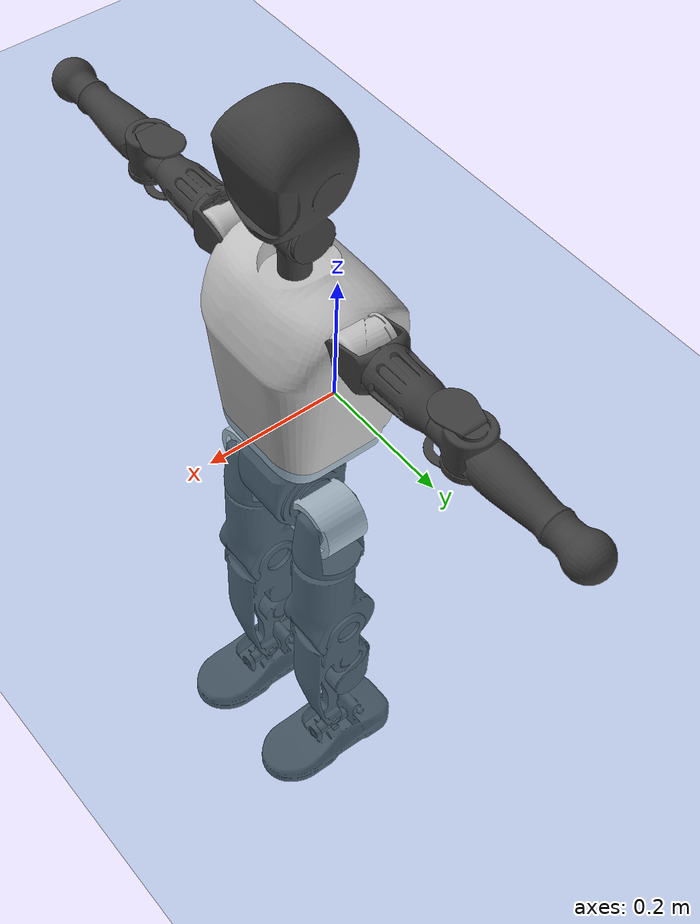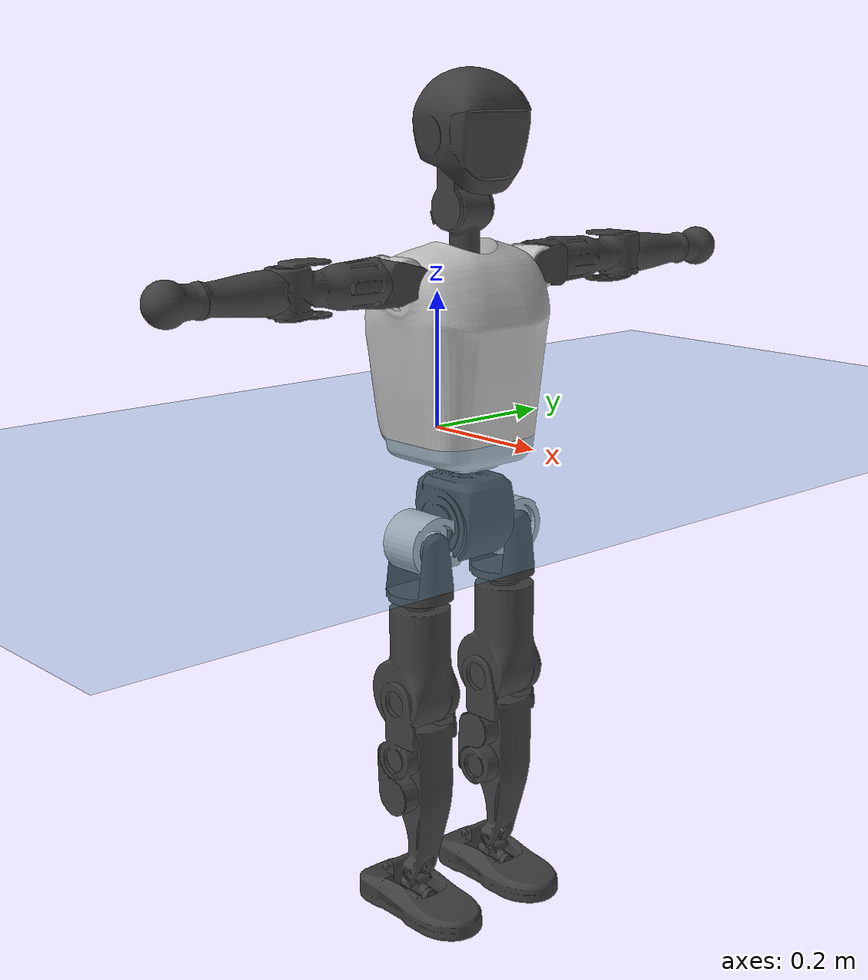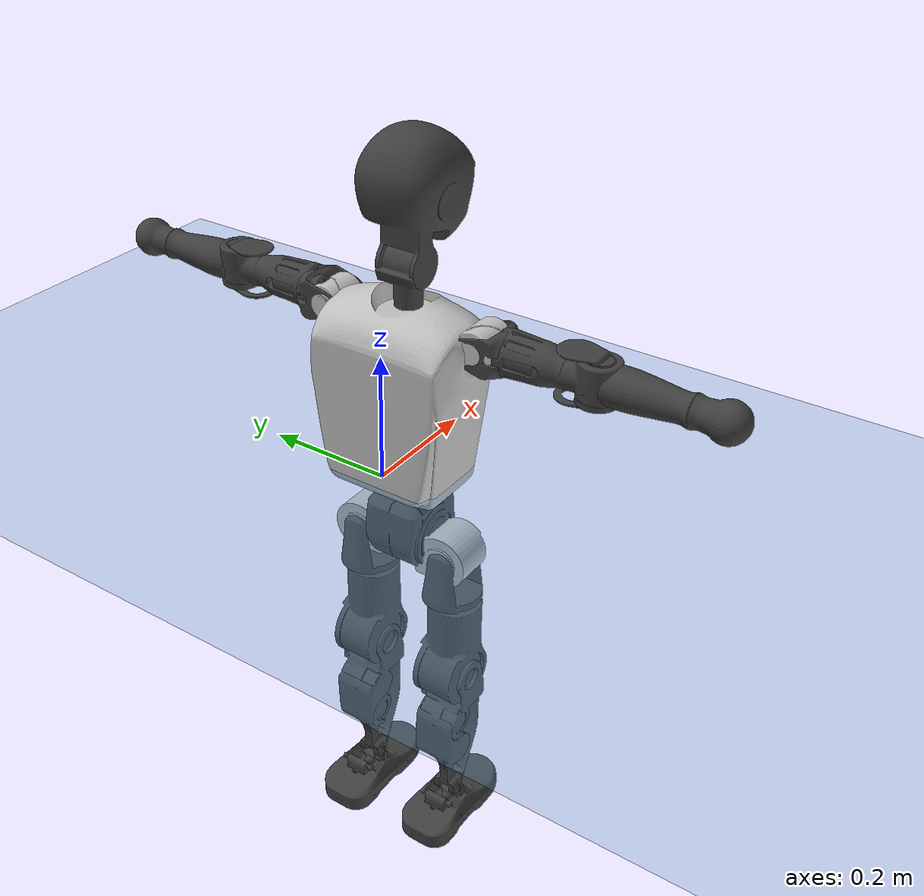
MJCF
<mujoco model="T1">
  <compiler angle="radian" assetdir="assets" balanceinertia="true" inertiafromgeom="false"/>

  <option timestep="0.005" density="1.2" viscosity="2e-05"/>

  <size nkey="1"/>

  <visual>
    <quality shadowsize="8192"/>
    <map shadowclip="0.5"/>
  </visual>

  <default>
    <default class="/">
      <joint armature="0.01" damping="0.01" frictionloss="0.1"/>
      <geom contype="0" conaffinity="0" group="1" solref="-1000 -80"/>
      <site size="0.01 0.005 0.005" group="5"/>
      <general forcelimited="true" biastype="affine" gainprm="25" biasprm="0 -25 -0.6"/>
      <default class="t1">
        <geom rgba="0.25 0.25 0.25 1"/>
        <default class="visual">
          <geom type="mesh" group="2"/>
        </default>
        <default class="collision">
          <geom group="3"/>
        </default>
        <default class="foot">
          <geom size="0.1115 0.05 0.015" type="box" condim="6" group="4" priority="1" solimp="0.015 1 0.015"/>
        </default>
        <default class="reward_collision_sphere">
          <geom group="5" rgba="1 0 0 1"/>
        </default>
      </default>
    </default>
  </default>

  <asset>
    <texture type="skybox" colorspace="auto" name="//unnamed_texture_0" builtin="gradient" rgb1="0.95 0.95 0.95" rgb2="0.95 0.95 0.95" width="100" height="600"/>
    <texture type="2d" colorspace="auto" name="texplane" builtin="checker" rgb1="0.345 0.575 0.748" rgb2="0.345 0.575 0.748" markrgb="1 1 1" width="512" height="512"/>
    <material name="MatPlane" class="/" texture="texplane" texuniform="true" texrepeat="2 2" specular="0.9"/>
    <mesh name="Trunk" class="/" file="Trunk.stl"/>
    <mesh name="H1" class="/" file="H1.stl"/>
    <mesh name="H2" class="/" file="H2.stl"/>
    <mesh name="AL1" class="/" file="AL1.stl"/>
    <mesh name="AL2" class="/" file="AL2.stl"/>
    <mesh name="AL3" class="/" file="AL3.stl"/>
    <mesh name="left_hand_link" class="/" file="left_hand_link.stl"/>
    <mesh name="AR1" class="/" file="AR1.stl"/>
    <mesh name="AR2" class="/" file="AR2.stl"/>
    <mesh name="AR3" class="/" file="AR3.stl"/>
    <mesh name="right_hand_link" class="/" file="right_hand_link.stl"/>
    <mesh name="Waist" class="/" file="Waist.stl"/>
    <mesh name="Hip_Pitch_Left" class="/" file="Hip_Pitch_Left.stl"/>
    <mesh name="Hip_Roll_Left" class="/" file="Hip_Roll_Left.stl"/>
    <mesh name="Hip_Yaw_Left" class="/" file="Hip_Yaw_Left.stl"/>
    <mesh name="Shank_Left" class="/" file="Shank_Left.stl"/>
    <mesh name="Ankle_Cross_Left" class="/" file="Ankle_Cross_Left.stl"/>
    <mesh name="left_foot_link" class="/" file="left_foot_link.stl"/>
    <mesh name="Hip_Pitch_Right" class="/" file="Hip_Pitch_Right.stl"/>
    <mesh name="Hip_Roll_Right" class="/" file="Hip_Roll_Right.stl"/>
    <mesh name="Hip_Yaw_Right" class="/" file="Hip_Yaw_Right.stl"/>
    <mesh name="Shank_Right" class="/" file="Shank_Right.stl"/>
    <mesh name="Ankle_Cross_Right" class="/" file="Ankle_Cross_Right.stl"/>
    <mesh name="right_foot_link" class="/" file="right_foot_link.stl"/>
  </asset>

  <worldbody>
    <geom name="floor" class="/" size="100 100 0.125" type="plane" group="0" material="MatPlane"/>
    <light name="toplight_shadow" class="/" pos="0 0 5" dir="0.0990148 0.0990148 -0.990148" type="directional" ambient="0.04 0.04 0.04" diffuse="0.55 0.55 0.55" specular="0.12 0.12 0.12"/>
    <light name="toplight_fill" class="/" pos="0 0 5" dir="0.0990148 0.0990148 -0.990148" type="directional" castshadow="false" ambient="0.04 0.04 0.04" diffuse="0.3 0.3 0.3" specular="0.08 0.08 0.08"/>
    <body name="trunk" childclass="t1" pos="-0.000164947 -0.002815 -0.000857635" quat="0.999999 -0.00060441 -0.000873861 -0.000312924">
      <inertial pos="0.0566406 -0.00290604 0.11277" quat="0.999802 -0.00155795 -0.0196492 -0.00260636" mass="10.4138" diaginertia="0.118406 0.0207425 0.0781461"/>
      <joint name="//unnamed_joint_0" type="free" armature="0" damping="0" frictionloss="0"/>
      <geom name="//unnamed_geom_1" class="visual" rgba="0.76 0.76 0.76 1" mesh="Trunk"/>
      <geom name="//unnamed_geom_2" class="collision" size="0.0723301 0.0964401 0.14466" pos="0.0631293 0 0.12831" type="box"/>
      <geom name="//unnamed_geom_3" class="reward_collision_sphere" size="0.110906" pos="0.0631293 0 0.106925"/>
      <geom name="//unnamed_geom_4" class="reward_collision_sphere" size="0.014466" pos="0.0631293 0.0656031 0"/>
      <geom name="//unnamed_geom_5" class="reward_collision_sphere" size="0.014466" pos="0.0631293 -0.0656031 0"/>
      <geom name="//unnamed_geom_6" class="reward_collision_sphere" size="0.014466" pos="0.0631293 0.0825827 0.192465"/>
      <geom name="//unnamed_geom_7" class="reward_collision_sphere" size="0.014466" pos="0.0631293 -0.0825827 0.192465"/>
      <site name="imu" pos="0.0117541 0.000734394 -0.012028" size="0.00964401"/>
      <camera name="track" pos="0 -1.5436 0" quat="0.707107 0.707107 0 0" mode="trackcom"/>
      <camera name="ego_camera" pos="0.128363 0 0.449084" quat="-0.5 -0.5 0.5 0.5"/>
      <body name="H1" pos="0.0633456 -0.000829931 0.259322" quat="1 -0.000166755 -6.41473e-05 -5.64101e-05">
        <inertial pos="-0.000625971 -0.000869219 0.0613648" quat="0.764305 -0.0136293 -0.00090952 0.64471" mass="0.401553" diaginertia="0.000304525 6.3514e-05 0.000209683"/>
        <joint name="AAHead_yaw" pos="0 0 0" axis="-0.00268216 0.00286175 0.999992" stiffness="0.00742982" range="-1.5212 1.55211" armature="0.0099604" damping="0.00592004" frictionloss="0.101244"/>
        <geom name="//unnamed_geom_8" class="visual" mesh="H1"/>
        <body name="H2" pos="-0.00386661 0.00070793 0.0643333" quat="0.999999 -2.78343e-05 -0.00135658 -0.000273147">
          <inertial pos="0.00943613 -0.000971626 0.105584" quat="0.987479 0.112694 -0.0718924 -0.0837689" mass="0.578792" diaginertia="0.00258618 0.000522338 0.00238551"/>
          <joint name="Head_pitch" pos="0 0 0" axis="-0.00467373 -0.999944 0.00948951" range="-1.22813 0.322141" armature="0.0110436" damping="0.0009132" frictionloss="0.0964174"/>
          <geom name="//unnamed_geom_9" class="visual" mesh="H2"/>
          <geom name="//unnamed_geom_10" class="collision" size="0.0771521" pos="0.0105215 0 0.117617"/>
          <geom name="//unnamed_geom_11" class="reward_collision_sphere" size="0.0867961" pos="0.0210431 0 0.106925"/>
        </body>
      </body>
      <body name="AL1" pos="0.0628917 0.0819908 0.233564" quat="1 -3.78795e-05 0.000570001 -0.000104116">
        <inertial pos="-0.00371687 0.0337994 0.000661452" quat="0.504005 0.496045 -0.504484 0.495393" mass="0.458108" diaginertia="0.00170647 0.000340797 0.000387298"/>
        <joint name="Left_Shoulder_Pitch" pos="0 0 0" axis="-0.00404837 0.999909 -0.0128618" range="-3.36051 1.22693" armature="0.00970734" damping="0.00479207" frictionloss="0.109929"/>
        <geom name="//unnamed_geom_12" class="visual" rgba="0.76 0.76 0.76 1" mesh="AL1"/>
        <body name="AL2" pos="-0.00014988 0.0402672 0.00205664" quat="1 0.000204566 -2.59029e-06 1.36761e-05">
          <inertial pos="0.00156642 0.0301218 -0.00296039" quat="0.48941 0.511594 -0.486635 0.511797" mass="0.149433" diaginertia="0.000528098 9.91589e-05 0.000246275"/>
          <joint name="Left_Shoulder_Roll" pos="0 0 0" axis="-0.999998 -0.00187195 -0.000808898" stiffness="0.000654508" range="-1.51789 1.72618" armature="0.00984259" damping="0" frictionloss="0.0966373"/>
          <geom name="//unnamed_geom_13" class="visual" mesh="AL2"/>
          <body name="AL3" pos="0.00316936 0.0475222 0.00340216" quat="1 -0.000566176 -0.000158219 0.000258714">
            <inertial pos="0.000990143 0.0652728 0.00198974" quat="0.698696 0.715365 0.00659385 0.00582001" mass="0.882968" diaginertia="0.0165004 0.00336901 0.000823091"/>
            <joint name="Left_Elbow_Pitch" pos="0 0 0" axis="0.00408978 -0.999885 0.0146175" range="-2.27525 2.21509" armature="0.00916642" damping="0.00680189" frictionloss="0.101237"/>
            <geom name="//unnamed_geom_14" class="visual" mesh="AL3"/>
            <geom name="//unnamed_geom_15" class="collision" size="0.028932 0.0723301" pos="0 0.03859 0" quat="0.707105 0.707108 0 0" type="cylinder"/>
            <geom name="//unnamed_geom_16" class="reward_collision_sphere" size="0.0347184"/>
            <body name="left_hand_link" pos="-0.00102554 0.114855 -0.00176422" quat="1 -0.000120283 1.70109e-05 8.46674e-05">
              <inertial pos="-0.000243364 0.0874815 -0.000363413" quat="0.713158 0.701002 -0.000987048 0.00113342" mass="0.293884" diaginertia="0.0103298 0.00229407 0.000303663"/>
              <joint name="Left_Elbow_Yaw" pos="0 0 0" axis="0.000397019 -0.00137725 0.999999" range="-2.43073 0.0044039" armature="0.00957295" damping="0.0257228" frictionloss="0.0928975"/>
              <geom name="//unnamed_geom_17" class="visual" mesh="left_hand_link"/>
              <geom name="//unnamed_geom_18" class="collision" size="0.028932 0.0843851" pos="0 0.100334 0" quat="0.707105 0.707108 0 0" type="cylinder"/>
              <geom name="//unnamed_geom_19" class="reward_collision_sphere" size="0.0482201"/>
              <geom name="//unnamed_geom_20" class="reward_collision_sphere" size="0.033754" pos="0 0.0848981 0"/>
              <geom name="//unnamed_geom_21" class="reward_collision_sphere" size="0.033754" pos="0 0.165937 0"/>
            </body>
          </body>
        </body>
      </body>
      <body name="AR1" pos="0.0625039 -0.0819745 0.234932" quat="1 0.000121683 -0.000891651 0.000284939">
        <inertial pos="-0.00330883 -0.0341086 -0.00135906" quat="0.494836 0.494247 -0.5138 0.496857" mass="0.478836" diaginertia="0.0016681 0.000351519 0.000414471"/>
        <joint name="Right_Shoulder_Pitch" pos="0 0 0" axis="-0.0050536 -0.999958 -0.00760122" stiffness="0.00168594" range="-1.23334 3.25297" armature="0.0103432" damping="0" frictionloss="0.0829064"/>
        <geom name="//unnamed_geom_22" class="visual" rgba="0.76 0.76 0.76 1" mesh="AR1"/>
        <body name="AR2" pos="-0.00026631 -0.0325222 -0.00264136" quat="1 0.000147176 2.92667e-05 -0.000533408">
          <inertial pos="0.00152442 -0.0304542 -0.0014402" quat="0.514535 0.480416 -0.506541 0.497865" mass="0.142011" diaginertia="0.000518095 9.57836e-05 0.000242892"/>
          <joint name="Right_Shoulder_Roll" pos="0 0 0" axis="-0.999957 -0.00656749 -0.00654872" range="-1.68679 1.62133" armature="0.00942697" damping="0.0184717" frictionloss="0.0931609"/>
          <geom name="//unnamed_geom_23" class="visual" mesh="AR2"/>
          <body name="AR3" pos="0.00246276 -0.0444624 0.000686123" quat="1 -3.23173e-06 3.00461e-05 1.0216e-05">
            <inertial pos="-0.00136751 -0.0668389 -0.00238355" quat="0.707243 0.706937 0.00651332 -0.00196713" mass="0.916076" diaginertia="0.0166748 0.00344948 0.000884817"/>
            <joint name="Right_Elbow_Pitch" pos="0 0 0" axis="0.00295882 0.999982 0.0051836" stiffness="0.00870451" range="-2.29423 2.21441" armature="0.0091508" damping="0.00894833" frictionloss="0.108931"/>
            <geom name="//unnamed_geom_24" class="visual" mesh="AR3"/>
            <geom name="//unnamed_geom_25" class="collision" size="0.028932 0.0723301" pos="0 -0.03859 0" quat="0.707105 0.707108 0 0" type="cylinder"/>
            <geom name="//unnamed_geom_26" class="reward_collision_sphere" size="0.0347184"/>
            <body name="right_hand_link" pos="-9.56583e-05 -0.11313 0.0015314" quat="1 0.000840806 0.000338286 0.000122275">
              <inertial pos="-0.00124485 -0.0875001 0.00155768" quat="0.706338 0.707874 0.000209469 0.000130837" mass="0.281344" diaginertia="0.0102166 0.00212658 0.000290838"/>
              <joint name="Right_Elbow_Yaw" pos="0 0 0" axis="0.0076639 0.00567591 0.999955" range="0.0186488 2.49318" armature="0.0103166" damping="0.00754009" frictionloss="0.107354"/>
              <geom name="//unnamed_geom_27" class="visual" mesh="right_hand_link"/>
              <geom name="//unnamed_geom_28" class="collision" size="0.028932 0.0843851" pos="0 -0.100334 0" quat="0.707105 0.707108 0 0" type="cylinder"/>
              <geom name="//unnamed_geom_29" class="reward_collision_sphere" size="0.0482201"/>
              <geom name="//unnamed_geom_30" class="reward_collision_sphere" size="0.033754" pos="0 -0.0848981 0"/>
              <geom name="//unnamed_geom_31" class="reward_collision_sphere" size="0.033754" pos="0 -0.165937 0"/>
            </body>
          </body>
        </body>
      </body>
      <body name="Waist" pos="0.0656807 -0.00317993 -0.12335" quat="1 0.0006907 -0.000340171 7.83616e-05">
        <inertial pos="0.0015666 -0.00205118 0.00850782" quat="0.983754 0.00450461 -0.179317 0.00731224" mass="2.33036" diaginertia="0.00698367 0.00147505 0.00665561"/>
        <joint name="Waist" pos="0 0 0" axis="-0.00498073 -0.000301344 0.999988" range="-1.55643 1.54781" armature="0.00903741" damping="0.0222922" frictionloss="0.103099"/>
        <geom name="//unnamed_geom_32" class="visual" mesh="Waist"/>
        <body name="Hip_Pitch_Left" pos="0.00063253 0.0793364 -0.00106852" quat="0.999999 2.32917e-05 0.000156075 -0.00117252">
          <inertial pos="0.00122957 -0.0088039 -0.018477" quat="0.975577 0.218733 0.01936 0.00550265" mass="0.937955" diaginertia="0.00233276 0.000399172 0.00179307"/>
          <joint name="Left_Hip_Pitch" pos="0 0 0" axis="-0.00162427 0.999997 -0.00189094" range="-1.78873 1.57496" armature="0.0108804" damping="0.00354869" frictionloss="0.101018"/>
          <geom name="//unnamed_geom_33" class="visual" rgba="0.76 0.76 0.76 1" mesh="Hip_Pitch_Left"/>
          <body name="Hip_Roll_Left" pos="-0.00120666 -0.00136669 -0.020409" quat="1 -4.09216e-05 0.000106439 7.86008e-05">
            <inertial pos="-0.000703068 -0.000474353 -0.0567301" quat="0.712608 -0.00271245 -0.0129876 0.701437" mass="0.341001" diaginertia="0.00227761 0.000410937 0.000722269"/>
            <joint name="Left_Hip_Roll" pos="0 0 0" axis="-1 0.000399779 -0.000103381" stiffness="0.000160843" range="-1.51447 0.216634" armature="0.00833728" damping="0.0119633" frictionloss="0.0921183"/>
            <geom name="//unnamed_geom_34" class="visual" mesh="Hip_Roll_Left"/>
            <geom name="//unnamed_geom_35" class="reward_collision_sphere" size="0.0530421"/>
            <body name="Hip_Yaw_Left" pos="0.00390621 -0.00043998 -0.0914127" quat="1 -6.1497e-07 1.80331e-05 -3.95435e-06">
              <inertial pos="-0.00842919 0.00125859 -0.0957714" quat="0.696391 -0.0322875 -0.0310952 0.716261" mass="1.85623" diaginertia="0.0335624 0.00682488 0.00357674"/>
              <joint name="Left_Hip_Yaw" pos="0 0 0" axis="-0.00284442 0.00177936 -0.999994" stiffness="0.00155935" range="-1.05491 1.0092" armature="0.00960198" damping="0.0227535" frictionloss="0.0934276"/>
              <geom name="//unnamed_geom_36" class="visual" mesh="Hip_Yaw_Left"/>
              <geom name="//unnamed_geom_37" class="collision" size="0.0482201 0.0771521" type="cylinder"/>
              <body name="Shank_Left" pos="-0.0158229 -0.001422 -0.145744" quat="1 -0.000512584 0.000223112 -0.000470088">
                <inertial pos="-0.00852485 -0.00146414 -0.132255" quat="0.997612 0.00991707 -0.0236694 0.0641236" mass="1.66003" diaginertia="0.0461186 0.00988092 0.00265914"/>
                <joint name="Left_Knee_Pitch" pos="0 0 0" axis="0.00225636 0.99999 0.00392871" stiffness="0.00652544" range="0.0454017 2.28255" armature="0.010129" damping="0" frictionloss="0.0891733"/>
                <geom name="//unnamed_geom_38" class="visual" mesh="Shank_Left"/>
                <geom name="//unnamed_geom_39" class="collision" size="0.0482201 0.0723301" pos="0 0 -0.12831" type="cylinder"/>
                <geom name="//unnamed_geom_40" class="reward_collision_sphere" size="0.0626861"/>
                <body name="Ankle_Cross_Left" pos="-0.00016712 0.00175063 -0.301659" quat="1 -0.000344631 0.000245162 -0.000276857">
                  <inertial pos="-0.00662425 0.000434634 -0.00845977" quat="0.440363 0.5545 0.544115 0.450054" mass="0.0662729" diaginertia="3.81405e-05 7.24366e-06 1.65308e-05"/>
                  <joint name="Left_Ankle_Pitch" pos="0 0 0" axis="0.0109397 0.99994 1.0011e-05" range="-0.860552 0.391405" armature="0.00840627" damping="0.0136409" frictionloss="0.0933008"/>
                  <geom name="//unnamed_geom_41" class="visual" mesh="Ankle_Cross_Left"/>
                  <body name="left_foot_link" pos="-0.00193908 -0.000515532 -0.0150351" quat="1 5.9101e-05 0.000189738 -0.000230133">
                    <inertial pos="0.000838889 0.00117874 -0.0101851" quat="-0.00519824 0.621051 0.00588639 0.783731" mass="0.598139" diaginertia="0.00336465 0.000645967 0.00290416"/>
                    <joint name="Left_Ankle_Roll" pos="0 0 0" axis="-0.999994 -0.00116781 -0.00336891" range="-0.428724 0.43116" armature="0.00903792" damping="0" frictionloss="0.0991411"/>
                    <geom name="//unnamed_geom_42" class="visual" mesh="left_foot_link"/>
                    <geom name="left_foot" class="foot" size="0.0730889 0.0448809 0.0160264" pos="0.0105215 0 -0.0160387"/>
                    <geom name="//unnamed_geom_44" class="reward_collision_sphere" size="0.0501489" pos="0.0105215 0 -0.0160387"/>
                    <geom name="//unnamed_geom_45" class="reward_collision_sphere" size="0.028932" pos="0.0999547 -0.0177514 -0.0160387"/>
                    <geom name="//unnamed_geom_46" class="reward_collision_sphere" size="0.028932" pos="-0.0736508 -0.0177514 -0.0160387"/>
                    <site name="left_foot" class="foot" pos="0.0105215 0 -0.0160387" size="0.00964401"/>
                  </body>
                </body>
              </body>
            </body>
          </body>
        </body>
        <body name="Hip_Pitch_Right" pos="-0.00212376 -0.0806907 -0.00205246" quat="1 -0.000111178 -5.2278e-06 -0.000109508">
          <inertial pos="-0.000155764 0.00686621 -0.0186866" quat="0.975404 -0.219854 0.00902906 -0.0129851" mass="0.939388" diaginertia="0.00231529 0.000392931 0.00168313"/>
          <joint name="Right_Hip_Pitch" pos="0 0 0" axis="-0.00214663 -0.999998 -0.000352448" range="-1.61847 1.81436" armature="0.0083078" damping="0.000852268" frictionloss="0.0970784"/>
          <geom name="//unnamed_geom_47" class="visual" rgba="0.76 0.76 0.76 1" mesh="Hip_Pitch_Right"/>
          <body name="Hip_Roll_Right" pos="0.000830083 -0.00373646 -0.0240175" quat="1 -0.000105812 -0.000475356 6.08731e-05">
            <inertial pos="0.000401523 -0.000316866 -0.0574835" quat="0.706063 -0.00171281 -0.0190176 0.707892" mass="0.356273" diaginertia="0.00231846 0.00042357 0.000731595"/>
            <joint name="Right_Hip_Roll" pos="0 0 0" axis="-1 -8.0124e-05 0.000652988" range="-0.190369 1.56003" armature="0.0109876" damping="0.00632166" frictionloss="0.0957278"/>
            <geom name="//unnamed_geom_48" class="visual" mesh="Hip_Roll_Right"/>
            <geom name="//unnamed_geom_49" class="reward_collision_sphere" size="0.0530421"/>
            <body name="Hip_Yaw_Right" pos="0.00142607 -0.00346946 -0.0896377" quat="1 0.000269544 0.00013377 -0.000644975">
              <inertial pos="-0.0047978 -0.00248155 -0.0939164" quat="0.71387 -0.0304734 -0.0339641 0.69879" mass="1.99925" diaginertia="0.0339737 0.00700166 0.00359675"/>
              <joint name="Right_Hip_Yaw" pos="0 0 0" axis="-0.000748278 0.00016484 -1" range="-1.03366 0.96812" armature="0.00996792" damping="0.0184808" frictionloss="0.0993392"/>
              <geom name="//unnamed_geom_50" class="visual" mesh="Hip_Yaw_Right"/>
              <geom name="//unnamed_geom_51" class="collision" size="0.0482201 0.0771521" type="cylinder"/>
              <body name="Shank_Right" pos="-0.010308 -0.000249917 -0.142598" quat="1 -0.000487774 9.49623e-05 -4.02099e-05">
                <inertial pos="-0.00681481 0.0022497 -0.131072" quat="0.998846 -0.00616999 -0.0325565 -0.0347582" mass="1.56581" diaginertia="0.0437726 0.00966341 0.0027191"/>
                <joint name="Right_Knee_Pitch" pos="0 0 0" axis="-0.000185206 -0.999979 -0.0064099" range="-2.30693 -0.0398463" armature="0.00944762" damping="0.0190194" frictionloss="0.0842102"/>
                <geom name="//unnamed_geom_52" class="visual" mesh="Shank_Right"/>
                <geom name="//unnamed_geom_53" class="collision" size="0.0482201 0.0723301" pos="0 0 -0.12831" type="cylinder"/>
                <geom name="//unnamed_geom_54" class="reward_collision_sphere" size="0.0626861"/>
                <body name="Ankle_Cross_Right" pos="0.00348248 -0.00201128 -0.297207" quat="1 0.000318113 -6.42086e-05 -0.000284576">
                  <inertial pos="-0.00643422 -0.00181391 -0.00657569" quat="0.449216 0.540231 0.55149 0.449682" mass="0.064576" diaginertia="3.81562e-05 7.00148e-06 1.5508e-05"/>
                  <joint name="Right_Ankle_Pitch" pos="0 0 0" axis="-0.000769648 -0.999916 0.012959" range="-0.381346 0.854843" armature="0.00925825" damping="0.00916705" frictionloss="0.0957142"/>
                  <geom name="//unnamed_geom_55" class="visual" mesh="Ankle_Cross_Right"/>
                  <body name="right_foot_link" pos="-0.000643502 -0.0015523 -0.0152897" quat="1 -0.000405364 0.000317182 0.000119604">
                    <inertial pos="0.000776059 0.00239069 -0.0114287" quat="0.00574818 0.616639 0.000953939 0.787224" mass="0.594987" diaginertia="0.00343872 0.00064776 0.00295409"/>
                    <joint name="Right_Ankle_Roll" pos="0 0 0" axis="-0.999954 0.00929173 -0.00239179" range="-0.457458 0.447936" armature="0.0104243" damping="0.0105226" frictionloss="0.0849896"/>
                    <geom name="//unnamed_geom_56" class="visual" mesh="right_foot_link"/>
                    <geom name="right_foot" class="foot" size="0.0658039 0.0429791 0.0152776" pos="0.0105215 0 -0.0160387"/>
                    <geom name="//unnamed_geom_58" class="reward_collision_sphere" size="0.0385761"/>
                    <geom name="//unnamed_geom_59" class="reward_collision_sphere" size="0.028932" pos="0.0105215 0 -0.0160387"/>
                    <geom name="//unnamed_geom_60" class="reward_collision_sphere" size="0.028932" pos="0.0999547 0.0177514 -0.0160387"/>
                    <geom name="//unnamed_geom_61" class="reward_collision_sphere" size="0.028932" pos="-0.0736508 0.0177514 -0.0160387"/>
                    <site name="right_foot" class="foot" pos="0.0105215 0 -0.0160387" size="0.00964401"/>
                  </body>
                </body>
              </body>
            </body>
          </body>
        </body>
      </body>
    </body>
  </worldbody>

  <contact>
    <pair class="/" geom1="floor" geom2="left_foot" name="//unnamed_contact_0"/>
    <pair class="/" geom1="floor" geom2="right_foot" name="//unnamed_contact_1"/>
  </contact>

  <actuator>
    <general name="AAHead_yaw" class="/" joint="AAHead_yaw" forcerange="-6.07559 6.07559" gainprm="22.4558" biasprm="0 -22.4558 -0.517545"/>
    <general name="Head_pitch" class="/" joint="Head_pitch" forcerange="-7.37189 7.37189" gainprm="22.4558" biasprm="0 -22.4558 -0.517545"/>
    <general name="Left_Shoulder_Pitch" class="/" joint="Left_Shoulder_Pitch" forcerange="-16.7877 16.7877" gainprm="22.4558" biasprm="0 -22.4558 -0.517545"/>
    <general name="Left_Shoulder_Roll" class="/" joint="Left_Shoulder_Roll" forcerange="-18.1791 18.1791" gainprm="22.4558" biasprm="0 -22.4558 -0.517545"/>
    <general name="Left_Elbow_Pitch" class="/" joint="Left_Elbow_Pitch" forcerange="-17.7971 17.7971" gainprm="22.4558" biasprm="0 -22.4558 -0.517545"/>
    <general name="Left_Elbow_Yaw" class="/" joint="Left_Elbow_Yaw" forcerange="-16.626 16.626" gainprm="22.4558" biasprm="0 -22.4558 -0.517545"/>
    <general name="Right_Shoulder_Pitch" class="/" joint="Right_Shoulder_Pitch" forcerange="-17.5603 17.5603" gainprm="22.4558" biasprm="0 -22.4558 -0.517545"/>
    <general name="Right_Shoulder_Roll" class="/" joint="Right_Shoulder_Roll" forcerange="-15.8036 15.8036" gainprm="22.4558" biasprm="0 -22.4558 -0.517545"/>
    <general name="Right_Elbow_Pitch" class="/" joint="Right_Elbow_Pitch" forcerange="-18.4335 18.4335" gainprm="22.4558" biasprm="0 -22.4558 -0.517545"/>
    <general name="Right_Elbow_Yaw" class="/" joint="Right_Elbow_Yaw" forcerange="-16.312 16.312" gainprm="22.4558" biasprm="0 -22.4558 -0.517545"/>
    <general name="Waist" class="/" joint="Waist" forcerange="-27.7225 27.7225" gainprm="22.4558" biasprm="0 -22.4558 -0.517545"/>
    <general name="Left_Hip_Pitch" class="/" joint="Left_Hip_Pitch" forcerange="-39.7977 39.7977" gainprm="22.4558" biasprm="0 -22.4558 -0.517545"/>
    <general name="Left_Hip_Roll" class="/" joint="Left_Hip_Roll" forcerange="-29.9099 29.9099" gainprm="22.4558" biasprm="0 -22.4558 -0.517545"/>
    <general name="Left_Hip_Yaw" class="/" joint="Left_Hip_Yaw" forcerange="-27.8653 27.8653" gainprm="22.4558" biasprm="0 -22.4558 -0.517545"/>
    <general name="Left_Knee_Pitch" class="/" joint="Left_Knee_Pitch" forcerange="-53.9664 53.9664" gainprm="22.4558" biasprm="0 -22.4558 -0.517545"/>
    <general name="Left_Ankle_Pitch" class="/" joint="Left_Ankle_Pitch" forcerange="-19.1121 19.1121" gainprm="22.4558" biasprm="0 -22.4558 -0.517545"/>
    <general name="Left_Ankle_Roll" class="/" joint="Left_Ankle_Roll" forcerange="-14.9391 14.9391" gainprm="22.4558" biasprm="0 -22.4558 -0.517545"/>
    <general name="Right_Hip_Pitch" class="/" joint="Right_Hip_Pitch" forcerange="-44.3417 44.3417" gainprm="22.4558" biasprm="0 -22.4558 -0.517545"/>
    <general name="Right_Hip_Roll" class="/" joint="Right_Hip_Roll" forcerange="-27.0318 27.0318" gainprm="22.4558" biasprm="0 -22.4558 -0.517545"/>
    <general name="Right_Hip_Yaw" class="/" joint="Right_Hip_Yaw" forcerange="-29.5904 29.5904" gainprm="22.4558" biasprm="0 -22.4558 -0.517545"/>
    <general name="Right_Knee_Pitch" class="/" joint="Right_Knee_Pitch" forcerange="-61.386 61.386" gainprm="22.4558" biasprm="0 -22.4558 -0.517545"/>
    <general name="Right_Ankle_Pitch" class="/" joint="Right_Ankle_Pitch" forcerange="-18.9221 18.9221" gainprm="22.4558" biasprm="0 -22.4558 -0.517545"/>
    <general name="Right_Ankle_Roll" class="/" joint="Right_Ankle_Roll" forcerange="-14.38 14.38" gainprm="22.4558" biasprm="0 -22.4558 -0.517545"/>
  </actuator>

  <sensor>
    <gyro site="imu" name="imu_angular_velocity"/>
    <velocimeter site="imu" name="imu_linear_velocity"/>
    <framelinvel objtype="site" objname="left_foot" name="left_foot_global_linear_velocity"/>
    <framelinvel objtype="site" objname="right_foot" name="right_foot_global_linear_velocity"/>
  </sensor>

  <keyframe>
    <key name="home" qpos="0 0 0.6385 1 0 0 0 0 0 0 1.4 0 -0.4 0 -1.4 0 0.4 0 -0.4 0 0 0.8 -0.4 0 0.4 0 0 -0.8 0.4 0"/>
  </keyframe>
</mujoco>
